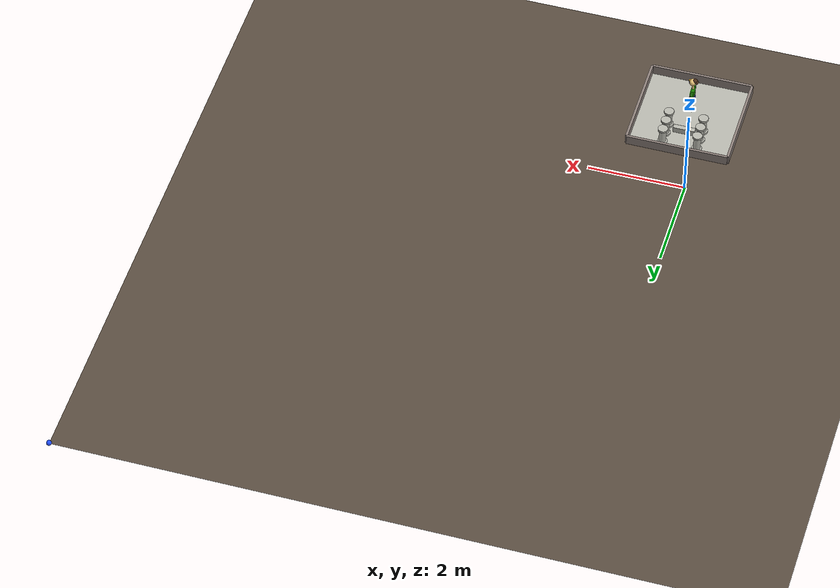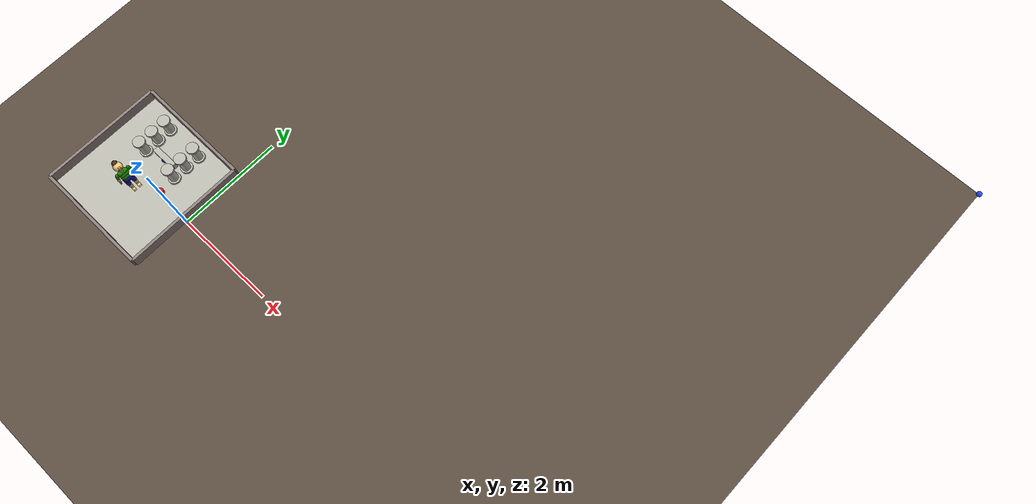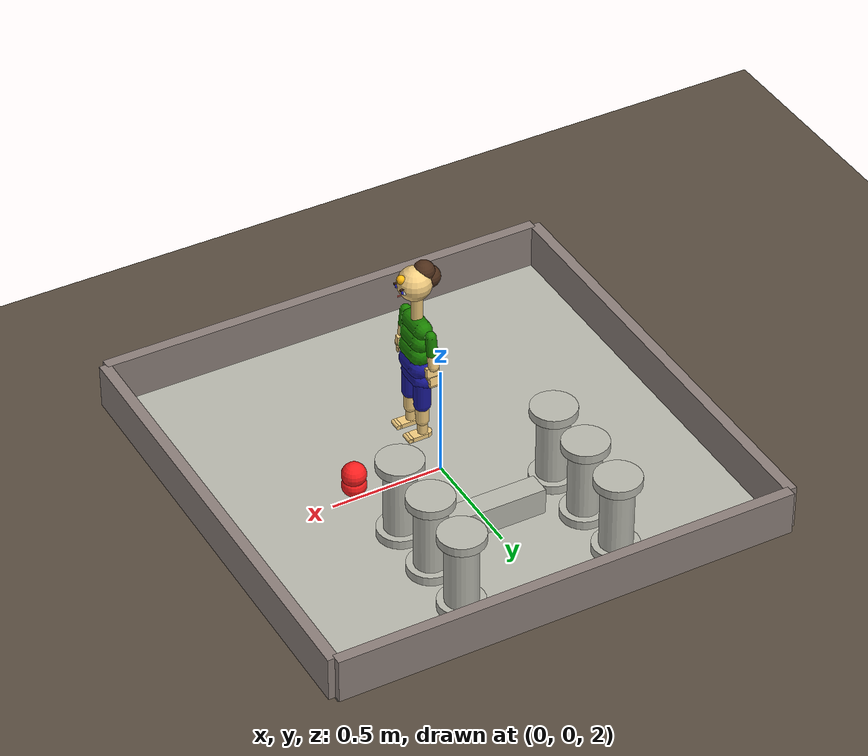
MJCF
<!-- DIAGNOSTIC VARIANT (2026-07-01): widened position-offset clamps to test
     whether range-of-motion is the locomotion wall (cause B). Throwaway; not for training. -->
<mujoco model="mimo_crawler">
  <compiler angle="degree" inertiafromgeom="true"/>
  <option gravity="0 0 -9.81" integrator="implicitfast" timestep="0.005" cone="elliptic"/>

  <default>
    <joint limited="true" damping=".1" stiffness=".1" armature="0.001"
           solimplimit="0.98 0.99 0.001 .5 1" solreflimit="0.02 1"/>
    <geom condim="3" friction="1 0.005 0.0002"
          solimp="0.95 0.99 0.001 0.5 1" solref="0.005 1"/>
    <motor ctrlrange="-1 1" ctrllimited="true" forcelimited="true"/>
  </default>

  <asset>
    <material name="skin"       rgba="0.95 0.80 0.50 1"/>
    <material name="head_mat"   rgba="0.95 0.80 0.50 1"/>
    <material name="green_top"  rgba="0.10 0.50 0.00 1"/>
    <material name="blue_pants" rgba="0.10 0.10 0.60 1"/>
    <material name="eye_mat"    rgba="0.98 0.98 0.95 1"/>   <!-- whites of eyes -->
    <material name="iris_mat"   rgba="0.15 0.15 0.85 1"/>   <!-- iris (blue) -->
    <material name="pupil_mat"  rgba="0.05 0.05 0.05 1"/>   <!-- pupil (near black) -->
    <material name="hair_mat"   rgba="0.30 0.18 0.10 1"/>   <!-- dark brown hair -->
    <material name="lip_mat"    rgba="0.85 0.40 0.35 1"/>   <!-- mouth/lip color -->
    <material name="neck_mat"   rgba="0.92 0.78 0.48 1"/>   <!-- skin, slightly darker than face -->
    <material name="nose_mat"   rgba="1.00 0.72 0.05 1"/>   <!-- bright gold: unmistakable FRONT marker -->

    <material name="MatPlatform" rgba="0.72 0.72 0.68 1"/>
    <material name="MatGround"   rgba="0.35 0.30 0.25 1"/>
    <material name="MatWall"     rgba="0.55 0.50 0.48 1"/>
  </asset>

  <contact>
    <pair geom1="lb" geom2="ub1" condim="1"/>
  </contact>

  <tendon>
    <fixed name="hip_bend" limited="true" range="-.01 .01">
      <joint joint="robot:hip_bend1" coef="1"/>
      <joint joint="robot:hip_bend2" coef="-1"/>
    </fixed>
    <fixed name="hip_rotation" limited="true" range="-.01 .01">
      <joint joint="robot:hip_rot1" coef="1"/>
      <joint joint="robot:hip_rot2" coef="-1"/>
    </fixed>
    <fixed name="hip_lean" limited="true" range="-.01 .01">
      <joint joint="robot:hip_lean1" coef="1"/>
      <joint joint="robot:hip_lean2" coef="-.5"/>
    </fixed>
  </tendon>

  <worldbody>
    <light cutoff="100" diffuse="1 1 1" dir="0 0 -1" directional="true"
           pos="0 0 5" specular="0.2 0.2 0.2"/>

    <geom name="ground" type="plane" size="10 10 0.1" pos="0 0 0"
          material="MatGround" conaffinity="1" contype="1"/>

    <!-- Platform: top surface at z=2.025 -->
    <geom name="platform" type="box" size="1.0 1.0 0.025" pos="0 0 2.0"
          material="MatPlatform" conaffinity="3" contype="3" friction="0.9 0.3 0.1"/>
    <geom name="gr_c0_base"  type="cylinder" size="0.10 0.02" pos="-0.35 0.3 2.045" material="MatPlatform" contype="3" conaffinity="3"/>
    <geom name="gr_c0_shaft" type="cylinder" size="0.07 0.15" pos="-0.35 0.3 2.215" material="MatPlatform" contype="3" conaffinity="3"/>
    <geom name="gr_c0_cap"   type="cylinder" size="0.10 0.02" pos="-0.35 0.3 2.385" material="MatPlatform" contype="3" conaffinity="3"/>
    <geom name="gr_c1_base"  type="cylinder" size="0.10 0.02" pos="0.35 0.3 2.045" material="MatPlatform" contype="3" conaffinity="3"/>
    <geom name="gr_c1_shaft" type="cylinder" size="0.07 0.15" pos="0.35 0.3 2.215" material="MatPlatform" contype="3" conaffinity="3"/>
    <geom name="gr_c1_cap"   type="cylinder" size="0.10 0.02" pos="0.35 0.3 2.385" material="MatPlatform" contype="3" conaffinity="3"/>
    <geom name="gr_c2_base"  type="cylinder" size="0.10 0.02" pos="-0.35 0.55 2.045" material="MatPlatform" contype="3" conaffinity="3"/>
    <geom name="gr_c2_shaft" type="cylinder" size="0.07 0.15" pos="-0.35 0.55 2.215" material="MatPlatform" contype="3" conaffinity="3"/>
    <geom name="gr_c2_cap"   type="cylinder" size="0.10 0.02" pos="-0.35 0.55 2.385" material="MatPlatform" contype="3" conaffinity="3"/>
    <geom name="gr_c3_base"  type="cylinder" size="0.10 0.02" pos="0.35 0.55 2.045" material="MatPlatform" contype="3" conaffinity="3"/>
    <geom name="gr_c3_shaft" type="cylinder" size="0.07 0.15" pos="0.35 0.55 2.215" material="MatPlatform" contype="3" conaffinity="3"/>
    <geom name="gr_c3_cap"   type="cylinder" size="0.10 0.02" pos="0.35 0.55 2.385" material="MatPlatform" contype="3" conaffinity="3"/>
    <geom name="gr_c4_base"  type="cylinder" size="0.10 0.02" pos="-0.35 0.8 2.045" material="MatPlatform" contype="3" conaffinity="3"/>
    <geom name="gr_c4_shaft" type="cylinder" size="0.07 0.15" pos="-0.35 0.8 2.215" material="MatPlatform" contype="3" conaffinity="3"/>
    <geom name="gr_c4_cap"   type="cylinder" size="0.10 0.02" pos="-0.35 0.8 2.385" material="MatPlatform" contype="3" conaffinity="3"/>
    <geom name="gr_c5_base"  type="cylinder" size="0.10 0.02" pos="0.35 0.8 2.045" material="MatPlatform" contype="3" conaffinity="3"/>
    <geom name="gr_c5_shaft" type="cylinder" size="0.07 0.15" pos="0.35 0.8 2.215" material="MatPlatform" contype="3" conaffinity="3"/>
    <geom name="gr_c5_cap"   type="cylinder" size="0.10 0.02" pos="0.35 0.8 2.385" material="MatPlatform" contype="3" conaffinity="3"/>
    <geom name="gr_bench" type="box" size="0.22 0.05 0.06" pos="0 0.42 2.085" material="MatPlatform" contype="3" conaffinity="3"/>

    <!-- Guardrails: 20cm tall walls, baby-scale -->
    <geom name="rail_N" type="box" size="1.02 0.025 0.10" pos="0  1.025 2.125"
          material="MatWall" conaffinity="3" contype="3"/>
    <geom name="rail_S" type="box" size="1.02 0.025 0.10" pos="0 -1.025 2.125"
          material="MatWall" conaffinity="3" contype="3"/>
    <geom name="rail_E" type="box" size="0.025 1.02 0.10" pos=" 1.025 0 2.125"
          material="MatWall" conaffinity="3" contype="3"/>
    <geom name="rail_W" type="box" size="0.025 1.02 0.10" pos="-1.025 0 2.125"
          material="MatWall" conaffinity="3" contype="3"/>

    <!-- MIMo body: hip is root.
         Standing upright: leg length ~0.329m so hip at z=2.354.
         MIMo faces +X by default; env reset will orient to face +Y. -->
    <body name="hip" pos="0 -0.2 2.354">
      <joint name="root" type="free" damping="0" stiffness="0"
             armature="0" limited="false" frictionloss="0"/>
      <geom name="lb" type="capsule" size=".048 .043" mass="1.1584"
            material="blue_pants" pos="-.002 0 0.005" euler="90 0 0"/>

      <body name="lower_body" pos="0.002 0 0.076">
        <joint name="robot:hip_lean1" type="hinge" pos="0 0 -.05" axis="1 0 0"
               range="-14 14" stiffness="3.38" damping="0.77" frictionloss=".049" armature="0.01"/>
        <joint name="robot:hip_rot1"  type="hinge" pos="0 0 -.05" axis="0 0 1"
               range="-18 18" stiffness="1.45" damping="0.29" frictionloss=".018" armature="0.01"/>
        <joint name="robot:hip_bend1" type="hinge" pos="0 0 -0.05" axis="0 1 0"
               range="-17 30.5" stiffness="2.20" damping="0.84" frictionloss="0.040" armature="0.01"/>
        <geom name="cb" type="capsule" size=".053 .035" mass="1.3245"
              material="blue_pants" pos="0.005 0 -.008" euler="90 0 0" contype="0"/>

        <body name="upper_body" pos="-.002 0 0.091">
          <joint name="robot:hip_lean2" type="hinge" pos="0 0 -.05" axis="1 0 0"
                 range="-27 27" stiffness="1.69" damping="0.38" frictionloss=".024" armature="0.01"/>
          <joint name="robot:hip_rot2"  type="hinge" pos="0 0 -.05" axis="0 0 1"
                 range="-18 18" stiffness="1.45" damping="0.29" frictionloss=".018" armature="0.01"/>
          <joint name="robot:hip_bend2" type="hinge" pos="0 0 -.05" axis="0 1 0"
                 range="-17 30.5" stiffness="2.20" damping="0.84" frictionloss="0.040" armature="0.01"/>
          <geom name="ub1" type="capsule" size=".052 .035" mass="1.0882"
                material="green_top" pos="0.007 0 -.032" euler="90 0 0"/>
          <geom name="ub2" type="capsule" size=".048 .039" mass="0.9499"
                material="green_top" pos="0.004 0 0.03" euler="90 0 0"/>

          <body name="chest" pos="0 0 0.09">
            <joint name="robot:chest_lean" type="hinge" pos="0 0 0" axis="1 0 0"
                   range="-9 9" stiffness="1.69" damping="0.38" frictionloss=".024" armature="0.01"/>
            <joint name="robot:chest_rot"  type="hinge" pos="0 0 0" axis="0 0 1"
                   range="-18 18" stiffness="1.45" damping="0.29" frictionloss=".018" armature="0.01"/>
            <geom name="ub3" type="capsule" size=".041 .047" mass="0.7217"
                  material="green_top" pos="0 0 0" euler="90 0 0"/>
            <geom name="neck_base" type="cylinder" material="neck_mat" size=".025 .064"
                  pos="0 0 .074" mass=".001" contype="0" conaffinity="0"/>

            <!-- RIGHT ARM -->
            <body name="right_upper_arm" pos="-.005 -0.105 .003" euler="170 0 0">
              <joint name="robot:right_shoulder_horizontal" type="hinge" pos="0 -.024 0"
                     axis="0 1 -4" range="-28 118" stiffness=".09" damping=".05"
                     frictionloss=".0009" armature="0.004"/>
              <joint name="robot:right_shoulder_ad_ab" type="hinge" pos="0 0 0"
                     axis="-1 0 0" range="-84 183" stiffness=".11" damping=".10"
                     frictionloss=".0014" armature="0.004"/>
              <joint name="robot:right_shoulder_rotation" type="hinge" pos="0 0 0"
                     axis="0 0 -1" range="-99 67" stiffness=".12" damping=".07"
                     frictionloss=".0008" armature="0.004"/>
              <geom name="right_uarm1" type="capsule" material="green_top"
                    size="0.024 0.040" mass=".200" pos="0 0 .040"/>
              <body name="right_lower_arm" pos="0 0 .080">
                <joint name="robot:right_elbow" type="hinge" pos="0 0 0" axis="0 -1 0"
                       springref="-20" range="-146 5" stiffness=".13" damping=".11"
                       frictionloss=".030" armature="0.002"/>
                <geom name="right_larm" type="capsule" size=".023 0.028" mass=".140" pos="0 0 .028" material="skin"/>
                <!-- Wrist + hand: passive (no actuator) -->
                <body name="right_hand" pos="0 -.007 .060">
                  <joint name="robot:right_hand1" type="hinge" pos="0 .007 0" axis="0 0 -1"
                         springref="-20" range="-90 90" stiffness=".22" damping=".03" frictionloss=".007" armature="0.001"/>
                  <joint name="robot:right_hand2" type="hinge" pos="0 0 0" axis="-1 0 0"
                         range="-92 86" stiffness=".33" damping=".11" frictionloss=".007" armature="0.001"/>
                  <joint name="robot:right_hand3" type="hinge" pos="0 0 0" axis="0 1 0"
                         range="-53 48" stiffness=".38" damping=".11" frictionloss=".007" armature="0.001"/>
                  <geom name="geom:right_hand1" type="box" size=".0281 .01 .0208"
                        mass=".04315" pos=".005 0 .0208" material="skin"/>
                  <geom name="geom:right_hand2" type="cylinder" size=".0102 .0278"
                        mass=".01602" pos=".005 0 .0416" euler="0 90 0" material="skin"/>
                  <site name="right_hand_touch" pos=".005 0 .03" size="0.035" rgba="0 0 0 0"/>
                  <body name="right_fingers" pos="0 0 .0416">
                    <joint name="robot:right_fingers" type="hinge" pos="0 0 0" axis="-1 0 0"
                           springref="-40" range="-160 8" stiffness=".017" damping=".018"
                           frictionloss=".0023" armature="0.0001"/>
                    <geom name="geom:right_fingers1" type="box" size=".0228 .01 .0207"
                          mass=".03494" pos="0 0 .0207" material="skin" friction="5 0.02 0.01"/>
                    <geom name="geom:right_fingers2" type="cylinder" size=".0102 .023"
                          mass=".01323" pos="0 0 .0414" euler="0 90 0" material="skin" friction="5 0.02 0.01"/>
                    <site name="right_fingers_touch" pos="0 0 .03" size="0.025" rgba="0 0 0 0"/>
                  </body>
                </body>
              </body>
            </body>

            <!-- LEFT ARM -->
            <body name="left_upper_arm" pos="-.005 0.105 .003" euler="-170 0 0">
              <joint name="robot:left_shoulder_horizontal" type="hinge" pos="0 .024 0"
                     axis="0 1 4" range="-28 118" stiffness=".09" damping=".05"
                     frictionloss=".0009" armature="0.004"/>
              <joint name="robot:left_shoulder_ad_ab" type="hinge" pos="0 0 0"
                     axis="1 0 0" range="-84 183" stiffness=".11" damping=".10"
                     frictionloss=".0014" armature="0.004"/>
              <joint name="robot:left_shoulder_rotation" type="hinge" pos="0 0 0"
                     axis="0 0 1" range="-99 67" stiffness=".12" damping=".07"
                     frictionloss=".0008" armature="0.004"/>
              <geom name="left_uarm1" type="capsule" material="green_top"
                    size="0.024 0.040" mass=".200" pos="0 0 .040"/>
              <body name="left_lower_arm" pos="0 0 .080">
                <joint name="robot:left_elbow" type="hinge" pos="0 0 0" axis="0 -1 0"
                       springref="-20" range="-146 5" stiffness=".13" damping=".11"
                       frictionloss=".030" armature="0.002"/>
                <geom name="left_larm" type="capsule" size=".023 0.028" mass=".140" pos="0 0 .028" material="skin"/>
                <body name="left_hand" pos="0 .007 .060">
                  <joint name="robot:left_hand1" type="hinge" pos="0 .007 0" axis="0 0 1"
                         springref="-20" range="-90 90" stiffness=".22" damping=".03" frictionloss=".007" armature="0.001"/>
                  <joint name="robot:left_hand2" type="hinge" pos="0 0 0" axis="1 0 0"
                         range="-92 86" stiffness=".33" damping=".11" frictionloss=".007" armature="0.001"/>
                  <joint name="robot:left_hand3" type="hinge" pos="0 0 0" axis="0 1 0"
                         range="-53 48" stiffness=".38" damping=".11" frictionloss=".007" armature="0.001"/>
                  <geom name="geom:left_hand1" type="box" size=".0281 .01 .0208"
                        mass=".04315" pos=".005 0 .0208" material="skin"/>
                  <geom name="geom:left_hand2" type="cylinder" size=".0102 .0278"
                        mass=".01602" pos=".005 0 .0416" euler="0 90 0" material="skin"/>
                  <site name="left_hand_touch" pos=".005 0 .03" size="0.035" rgba="0 0 0 0"/>
                  <body name="left_fingers" pos="0 0 .0416">
                    <joint name="robot:left_fingers" type="hinge" pos="0 0 0" axis="1 0 0"
                           springref="-40" range="-160 8" stiffness=".017" damping=".018"
                           frictionloss=".0023" armature="0.0001"/>
                    <geom name="geom:left_fingers1" type="box" size=".0228 .01 .0207"
                          mass=".03494" pos="0 0 .0207" material="skin" friction="5 0.02 0.01"/>
                    <geom name="geom:left_fingers2" type="cylinder" size=".0102 .023"
                          mass=".01323" pos="0 0 .0414" euler="0 90 0" material="skin" friction="5 0.02 0.01"/>
                    <site name="left_fingers_touch" pos="0 0 .03" size="0.025" rgba="0 0 0 0"/>
                  </body>
                </body>
              </body>
            </body>

            <!-- HEAD: eye joints removed, fixed stereo cameras instead -->
            <body name="head" pos="0 0 .135">
              <joint name="robot:head_swivel"    type="hinge" pos="0 0 0"      axis="0 0 1"
                     range="-111 111" stiffness=".23" damping=".38" frictionloss=".022" armature="0.008"/>
              <joint name="robot:head_tilt"      type="hinge" pos="0 0 0.0123" axis="0 1 0"
                     range="-70 81"  stiffness=".45" damping=".70" frictionloss=".022" armature="0.008"/>
              <joint name="robot:head_tilt_side" type="hinge" pos="0 0 0.0245" axis="1 0 0"
                     range="-70 70"  stiffness=".37" damping=".38" frictionloss=".022" armature="0.008"/>
              <geom name="head_geom" type="sphere" size=".0735" mass="1.7748"
                    material="head_mat" pos="0.01 0 0.0735"/>
              <site name="vestibular" type="sphere" size="0.01" pos="0.01 0 0.0735"/>

              <!-- Eye whites (sclera) — visible spheres in render -->
              <geom name="geom:left_eye"  type="sphere" material="eye_mat" size=".015"
                    mass=".001" pos=".066 .025 .067" contype="0" conaffinity="0"/>
              <geom name="geom:right_eye" type="sphere" material="eye_mat" size=".015"
                    mass=".001" pos=".066 -.025 .067" contype="0" conaffinity="0"/>
              <!-- Iris (blue) — slightly forward and smaller, embedded in sclera -->
              <geom name="iris_left"  type="sphere" material="iris_mat" size=".009"
                    mass=".0001" pos=".076 .025 .067" contype="0" conaffinity="0"/>
              <geom name="iris_right" type="sphere" material="iris_mat" size=".009"
                    mass=".0001" pos=".076 -.025 .067" contype="0" conaffinity="0"/>
              <!-- Pupils (near-black) — even more forward, smaller than iris -->
              <geom name="pupil_left"  type="sphere" material="pupil_mat" size=".0045"
                    mass=".0001" pos=".081 .025 .067" contype="0" conaffinity="0"/>
              <geom name="pupil_right" type="sphere" material="pupil_mat" size=".0045"
                    mass=".0001" pos=".081 -.025 .067" contype="0" conaffinity="0"/>

              <geom name="nose" type="sphere" material="nose_mat" size=".019"
                    mass=".001" pos=".071 .0 .113" contype="0" conaffinity="0"/>

              <!-- Mouth: small reddish horizontal bar below the nose. -->
              <geom name="mouth" type="box" material="lip_mat" size=".012 .002 .003"
                    mass=".0005" pos=".076 .0 .035" contype="0" conaffinity="0"/>

              <geom name="eyebrow_left"  type="box" material="hair_mat" size=".012 .004 .0035"
                    mass=".0002" pos=".078 .026 .082" euler="0 8 0" contype="0" conaffinity="0"/>
              <geom name="eyebrow_right" type="box" material="hair_mat" size=".012 .004 .0035"
                    mass=".0002" pos=".078 -.026 .082" euler="0 8 0" contype="0" conaffinity="0"/>

              <geom name="hair_top"  type="sphere" material="hair_mat" size=".046"
                    mass=".005" pos="-.032 0 .120" contype="0" conaffinity="0"/>
              <geom name="hair_back" type="sphere" material="hair_mat" size=".048"
                    mass=".005" pos="-.056 0 .086" contype="0" conaffinity="0"/>
              <camera name="left_eye"  pos=".07  .0245 .067375" xyaxes="0 -1 0  -0.966 0 0.259" fovy="120"/>
              <camera name="right_eye" pos=".07 -.0245 .067375" xyaxes="0 -1 0  -0.966 0 0.259" fovy="120"/>
            </body>
          </body>
        </body>
      </body>

      <!-- RIGHT LEG -->
      <body name="right_upper_leg" pos="0.005 -.051 -.007">
        <joint name="robot:right_hip1" type="hinge" pos="0 0 0" axis="0 1 0"
               springref="-10" range="-133 20" stiffness="1.72" damping="1.27" frictionloss=".08" armature=".005"/>
        <joint name="robot:right_hip2" type="hinge" pos="0 0 0" axis="1 0 0"
               range="-51 17" stiffness="3.51" damping="1.99" frictionloss=".062" armature=".005"/>
        <joint name="robot:right_hip3" type="hinge" pos="0 0 0" axis="0 0 -1"
               range="-32 41" stiffness="2.16" damping="0.75" frictionloss=".027" armature=".005"/>
        <geom name="geom:right_upper_leg1" type="capsule" material="blue_pants"
              size=".037 .053" mass=".680" pos="0 0 -.054"/>
        <body name="right_lower_leg" pos="0 0 -.115">
          <joint name="robot:right_knee" type="hinge" pos="0 0 0" axis="0 -1 0"
                 springref="-30" range="-145 4" stiffness="1.63" damping="0.53" frictionloss=".065" armature=".003"/>
          <geom name="geom:right_lower_leg1" type="capsule" size=".029 .037" mass=".284" pos="0 0 -.037" material="skin"/>
          <geom name="geom:right_lower_leg2" type="capsule" size=".021 .024" mass=".098" pos="0 0 -.114" material="skin"/>
          <body name="right_foot" pos="0 0 -.150">
            <joint name="robot:right_foot1" type="hinge" pos="0 0 .015" axis="0 -1 0"
                   springref="-10" range="-63 32" stiffness="1.29" damping="0.6" frictionloss=".019" armature=".003"/>
            <joint name="robot:right_foot2" type="hinge" pos="0 0 .015" axis="1 0 0"
                   range="-33 31" stiffness="0.96" damping="0.37" frictionloss=".011" armature=".0025"/>
            <joint name="robot:right_foot3" type="hinge" pos="0 0 .015" axis="0 0 1"
                   range="-20 30" stiffness="1.15" damping="0.38" frictionloss=".012" armature=".002"/>
            <geom name="geom:right_foot1" type="cylinder" size=".0249 .0099" mass=".03219" pos="-0.016 0 0" material="skin"/>
            <geom name="geom:right_foot2" type="box" size=".035 .025 .01" mass=".05850" pos="0.019 0 0" material="skin" friction="2 0.02 0.01"/>
            <geom name="geom:right_foot3" type="cylinder" size=".0099 .0248" mass=".01268" pos=".054 0 0" euler="90 0 0" material="skin" friction="2 0.02 0.01"/>
            <site name="right_foot_touch" pos="0.02 0 -0.01" size="0.04" rgba="0 0 0 0"/>
            <body name="right_toes" pos=".054 0 0">
              <joint name="robot:right_toes" type="hinge" pos="0 0 0" axis="0 -1 0"
                     range="-60 80" frictionloss=".005" armature=".0005" stiffness=".106" damping=".04"/>
              <geom name="geom:right_toes1" type="box" size=".007 .0249 .0099" mass=".01084" pos=".007 0 0" material="skin" friction="2 0.02 0.01"/>
              <geom name="geom:right_toes2" type="cylinder" size=".01 .025" mass=".01226" pos=".014 0 0" euler="90 0 0" material="skin" friction="2 0.02 0.01"/>
            </body>
          </body>
        </body>
      </body>

      <!-- LEFT LEG -->
      <body name="left_upper_leg" pos="0.005 .051 -.007">
        <joint name="robot:left_hip1" type="hinge" pos="0 0 0" axis="0 1 0"
               springref="-10" range="-133 20" stiffness="1.72" damping="1.27" frictionloss=".08" armature=".005"/>
        <joint name="robot:left_hip2" type="hinge" pos="0 0 0" axis="-1 0 0"
               range="-51 17" stiffness="3.51" damping="1.99" frictionloss=".062" armature=".005"/>
        <joint name="robot:left_hip3" type="hinge" pos="0 0 0" axis="0 0 1"
               range="-32 41" stiffness="2.16" damping="0.75" frictionloss=".027" armature=".005"/>
        <geom name="geom:left_upper_leg1" type="capsule" material="blue_pants"
              size=".037 .053" mass=".680" pos="0 0 -.054"/>
        <body name="left_lower_leg" pos="0 0 -.115">
          <joint name="robot:left_knee" type="hinge" pos="0 0 0" axis="0 -1 0"
                 springref="-30" range="-145 4" stiffness="1.63" damping="0.53" frictionloss=".065" armature=".003"/>
          <geom name="geom:left_lower_leg1" type="capsule" size=".029 .037" mass=".284" pos="0 0 -.037" material="skin"/>
          <geom name="geom:left_lower_leg2" type="capsule" size=".021 .024" mass=".098" pos="0 0 -.114" material="skin"/>
          <body name="left_foot" pos="0 0 -.150">
            <joint name="robot:left_foot1" type="hinge" pos="0 0 .015" axis="0 -1 0"
                   springref="-10" range="-63 32" stiffness="1.29" damping="0.6" frictionloss=".019" armature=".003"/>
            <joint name="robot:left_foot2" type="hinge" pos="0 0 .015" axis="-1 0 0"
                   range="-33 31" stiffness="0.96" damping="0.37" frictionloss=".011" armature=".0025"/>
            <joint name="robot:left_foot3" type="hinge" pos="0 0 .015" axis="0 0 -1"
                   range="-20 30" stiffness="1.15" damping="0.38" frictionloss=".012" armature=".002"/>
            <geom name="geom:left_foot1" type="cylinder" size=".0249 .0099" mass=".03219" pos="-0.016 0 0" material="skin"/>
            <geom name="geom:left_foot2" type="box" size=".035 .025 .01" mass=".05850" pos="0.019 0 0" material="skin" friction="2 0.02 0.01"/>
            <geom name="geom:left_foot3" type="cylinder" size=".0099 .0248" mass=".01268" pos=".054 0 0" euler="90 0 0" material="skin" friction="2 0.02 0.01"/>
            <site name="left_foot_touch" pos="0.02 0 -0.01" size="0.04" rgba="0 0 0 0"/>
            <body name="left_toes" pos=".054 0 0">
              <joint name="robot:left_toes" type="hinge" pos="0 0 0" axis="0 -1 0"
                     range="-60 80" frictionloss=".005" armature=".0005" stiffness=".106" damping=".04"/>
              <geom name="geom:left_toes1" type="box" size=".007 .0249 .0099" mass=".01084" pos=".007 0 0" material="skin" friction="2 0.02 0.01"/>
              <geom name="geom:left_toes2" type="cylinder" size=".01 .025" mass=".01226" pos=".014 0 0" euler="90 0 0" material="skin" friction="2 0.02 0.01"/>
            </body>
          </body>
        </body>
      </body>

    </body> <!-- end MIMo/hip -->

    <!-- TARGET BALL 1 (red) -->
    <body name="target" pos="0.4 0 2.078">
      <joint name="target_free" type="free" armature="0" damping="0" limited="false" stiffness="0" frictionloss="0"/>
      <geom name="target_geom" type="sphere" size="0.053"
            rgba="1 0.12 0.12 1" contype="1" conaffinity="1" density="150" friction="0.8 0.3 0.1"/>
    </body>

    <body name="ghost" mocap="true" pos="0.4 0 2.131">
      <geom name="ghost_geom" type="sphere" size="0.053" rgba="1 0.12 0.12 1" contype="0" conaffinity="0"/>
    </body>

    <!-- GHOST decoy (blue): visible non-physical twin of target2, for two-ball prism
         mode (whole-field displacement). Parked far off-platform unless prism+decoy. -->
    <body name="ghost2" mocap="true" pos="10 10 0">
      <geom name="ghost2_geom" type="sphere" size="0.053" rgba="0.12 0.3 1 1" contype="0" conaffinity="0"/>
    </body>

    <!-- TARGET BALL 2 (blue) — used by Phase C two-ball env -->
    <body name="target2" pos="0 0.4 2.078">
      <joint name="target2_free" type="free" armature="0" damping="0" limited="false" stiffness="0" frictionloss="0"/>
      <geom name="target2_geom" type="sphere" size="0.053"
            rgba="0.12 0.3 1 1" contype="1" conaffinity="1" density="150" friction="0.8 0.3 0.1"/>
    </body>

    <camera name="overhead" pos="0 0 5.5" xyaxes="1 0 0 0 1 0" fovy="55"/>
    <camera name="ringside" pos="0 -2.5 2.4" xyaxes="1 0 0 0 0.12 0.993" fovy="45"/>
  </worldbody>

  <actuator>

    <!-- Trunk: 5 DOF — position-offset, o=0.2 rad -->
    <position name="act:hip_bend"    joint="robot:hip_bend1"  kp="105.8" kv="10" ctrlrange="-0.4500 0.4500" forcelimited="false"/>
    <position name="act:hip_twist"   joint="robot:hip_rot1"   kp="36.3"  kv="10" ctrlrange="-0.4000 0.4000" forcelimited="false"/>
    <position name="act:hip_lean"    joint="robot:hip_lean1"  kp="72.5"  kv="10" ctrlrange="-0.4000 0.4000" forcelimited="false"/>
    <position name="act:chest_twist" joint="robot:chest_rot"  kp="3.6"   kv="10" ctrlrange="-0.4000 0.4000" forcelimited="false"/>
    <position name="act:chest_lean"  joint="robot:chest_lean" kp="7.2"   kv="10" ctrlrange="-0.3500 0.3500" forcelimited="false"/>

    <!-- Head: 2 DOF — torque motors, unchanged from mimo_crawler.xml -->
    <motor name="act:head_swivel" joint="robot:head_swivel" gear="1.8"  forcerange="-1 1"/>
    <motor name="act:head_tilt"   joint="robot:head_tilt"   gear="3.3"  forcerange="-1 .55"/>

    <!-- Right arm: 4 DOF — position-offset, o=0.4 rad -->
    <position name="act:r_sh_horiz"  joint="robot:right_shoulder_horizontal" kp="18.0"  kv="10" ctrlrange="-0.9000 0.9000" forcelimited="false"/>
    <position name="act:r_sh_adab"   joint="robot:right_shoulder_ad_ab"      kp="40.0"  kv="10" ctrlrange="-0.9000 0.9000" forcelimited="false"/>
    <position name="act:r_sh_rot"    joint="robot:right_shoulder_rotation"   kp="25.0"  kv="10" ctrlrange="-0.7000 0.7000" forcelimited="false"/>
    <!-- elbow neutral=-20deg=-0.3491rad; ctrlrange=[neutral-0.4, min(0.0873,neutral+0.4)] -->
    <position name="act:r_elbow"     joint="robot:right_elbow"               kp="36.0"  kv="10" ctrlrange="-1.4000 0.3000" forcelimited="false"/>

    <!-- Left arm: 4 DOF — position-offset, o=0.4 rad -->
    <position name="act:l_sh_horiz"  joint="robot:left_shoulder_horizontal"  kp="18.0"  kv="10" ctrlrange="-0.9000 0.9000" forcelimited="false"/>
    <position name="act:l_sh_adab"   joint="robot:left_shoulder_ad_ab"       kp="40.0"  kv="10" ctrlrange="-0.9000 0.9000" forcelimited="false"/>
    <position name="act:l_sh_rot"    joint="robot:left_shoulder_rotation"    kp="25.0"  kv="10" ctrlrange="-0.7000 0.7000" forcelimited="false"/>
    <position name="act:l_elbow"     joint="robot:left_elbow"                kp="36.0"  kv="10" ctrlrange="-1.4000 0.3000" forcelimited="false"/>

    <!-- Right leg: 5 DOF — position-offset, o=0.4 rad -->
    <!-- hip_flex neutral=-10deg=-0.1745rad -->
    <position name="act:r_hip_flex"  joint="robot:right_hip1"  kp="80.0"  kv="10" ctrlrange="-1.1000 0.6000" forcelimited="false"/>
    <position name="act:r_hip_ab"    joint="robot:right_hip2"  kp="62.4"  kv="10" ctrlrange="-0.7000 0.6000" forcelimited="false"/>
    <position name="act:r_hip_rot"   joint="robot:right_hip3"  kp="35.4"  kv="10" ctrlrange="-0.7000 0.7000" forcelimited="false"/>
    <!-- knee neutral=-30deg=-0.5236rad -->
    <position name="act:r_knee"      joint="robot:right_knee"  kp="100.0" kv="10" ctrlrange="-1.6000 0.1000" forcelimited="false"/>
    <!-- ankle neutral=-10deg=-0.1745rad -->
    <position name="act:r_ankle"     joint="robot:right_foot1" kp="37.8"  kv="10" ctrlrange="-0.9000 0.5000" forcelimited="false"/>

    <!-- Left leg: 5 DOF — position-offset, o=0.4 rad -->
    <position name="act:l_hip_flex"  joint="robot:left_hip1"   kp="80.0"  kv="10" ctrlrange="-1.1000 0.6000" forcelimited="false"/>
    <position name="act:l_hip_ab"    joint="robot:left_hip2"   kp="62.4"  kv="10" ctrlrange="-0.7000 0.6000" forcelimited="false"/>
    <position name="act:l_hip_rot"   joint="robot:left_hip3"   kp="35.4"  kv="10" ctrlrange="-0.7000 0.7000" forcelimited="false"/>
    <position name="act:l_knee"      joint="robot:left_knee"   kp="100.0" kv="10" ctrlrange="-1.6000 0.1000" forcelimited="false"/>
    <position name="act:l_ankle"     joint="robot:left_foot1"  kp="37.8"  kv="10" ctrlrange="-0.9000 0.5000" forcelimited="false"/>
    <position name="act:head_yaw"    joint="robot:head_tilt_side" kp="8.0" kv="1.0" ctrlrange="-1.2000 1.2000" forcelimited="false"/>
  </actuator>

  <sensor>
    <accelerometer name="vestibular_acc"  site="vestibular"/>
    <gyro          name="vestibular_gyro" site="vestibular"/>
    <jointpos name="pos:hip_bend"    joint="robot:hip_bend1"/>
    <jointpos name="pos:hip_twist"   joint="robot:hip_rot1"/>
    <jointpos name="pos:hip_lean"    joint="robot:hip_lean1"/>
    <jointpos name="pos:chest_twist" joint="robot:chest_rot"/>
    <jointpos name="pos:chest_lean"  joint="robot:chest_lean"/>
    <jointpos name="pos:head_swivel" joint="robot:head_swivel"/>
    <jointpos name="pos:head_tilt"   joint="robot:head_tilt"/>
    <jointpos name="pos:r_sh_horiz"  joint="robot:right_shoulder_horizontal"/>
    <jointpos name="pos:r_sh_adab"   joint="robot:right_shoulder_ad_ab"/>
    <jointpos name="pos:r_sh_rot"    joint="robot:right_shoulder_rotation"/>
    <jointpos name="pos:r_elbow"     joint="robot:right_elbow"/>
    <jointpos name="pos:l_sh_horiz"  joint="robot:left_shoulder_horizontal"/>
    <jointpos name="pos:l_sh_adab"   joint="robot:left_shoulder_ad_ab"/>
    <jointpos name="pos:l_sh_rot"    joint="robot:left_shoulder_rotation"/>
    <jointpos name="pos:l_elbow"     joint="robot:left_elbow"/>
    <jointpos name="pos:r_hip_flex"  joint="robot:right_hip1"/>
    <jointpos name="pos:r_hip_ab"    joint="robot:right_hip2"/>
    <jointpos name="pos:r_hip_rot"   joint="robot:right_hip3"/>
    <jointpos name="pos:r_knee"      joint="robot:right_knee"/>
    <jointpos name="pos:r_ankle"     joint="robot:right_foot1"/>
    <jointpos name="pos:l_hip_flex"  joint="robot:left_hip1"/>
    <jointpos name="pos:l_hip_ab"    joint="robot:left_hip2"/>
    <jointpos name="pos:l_hip_rot"   joint="robot:left_hip3"/>
    <jointpos name="pos:l_knee"      joint="robot:left_knee"/>
    <jointpos name="pos:l_ankle"     joint="robot:left_foot1"/>
    <jointvel name="vel:hip_bend"    joint="robot:hip_bend1"/>
    <jointvel name="vel:hip_twist"   joint="robot:hip_rot1"/>
    <jointvel name="vel:hip_lean"    joint="robot:hip_lean1"/>
    <jointvel name="vel:chest_twist" joint="robot:chest_rot"/>
    <jointvel name="vel:chest_lean"  joint="robot:chest_lean"/>
    <jointvel name="vel:head_swivel" joint="robot:head_swivel"/>
    <jointvel name="vel:head_tilt"   joint="robot:head_tilt"/>
    <jointvel name="vel:r_sh_horiz"  joint="robot:right_shoulder_horizontal"/>
    <jointvel name="vel:r_sh_adab"   joint="robot:right_shoulder_ad_ab"/>
    <jointvel name="vel:r_sh_rot"    joint="robot:right_shoulder_rotation"/>
    <jointvel name="vel:r_elbow"     joint="robot:right_elbow"/>
    <jointvel name="vel:l_sh_horiz"  joint="robot:left_shoulder_horizontal"/>
    <jointvel name="vel:l_sh_adab"   joint="robot:left_shoulder_ad_ab"/>
    <jointvel name="vel:l_sh_rot"    joint="robot:left_shoulder_rotation"/>
    <jointvel name="vel:l_elbow"     joint="robot:left_elbow"/>
    <jointvel name="vel:r_hip_flex"  joint="robot:right_hip1"/>
    <jointvel name="vel:r_hip_ab"    joint="robot:right_hip2"/>
    <jointvel name="vel:r_hip_rot"   joint="robot:right_hip3"/>
    <jointvel name="vel:r_knee"      joint="robot:right_knee"/>
    <jointvel name="vel:r_ankle"     joint="robot:right_foot1"/>
    <jointvel name="vel:l_hip_flex"  joint="robot:left_hip1"/>
    <jointvel name="vel:l_hip_ab"    joint="robot:left_hip2"/>
    <jointvel name="vel:l_hip_rot"   joint="robot:left_hip3"/>
    <jointvel name="vel:l_knee"      joint="robot:left_knee"/>
    <jointvel name="vel:l_ankle"     joint="robot:left_foot1"/>
    <touch name="touch:right_hand"    site="right_hand_touch"/>
    <touch name="touch:left_hand"     site="left_hand_touch"/>
    <touch name="touch:right_fingers" site="right_fingers_touch"/>
    <touch name="touch:left_fingers"  site="left_fingers_touch"/>
    <touch name="touch:right_foot"    site="right_foot_touch"/>
    <touch name="touch:left_foot"     site="left_foot_touch"/>
  </sensor>

</mujoco>
